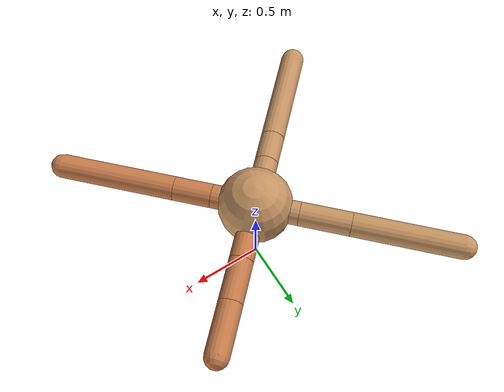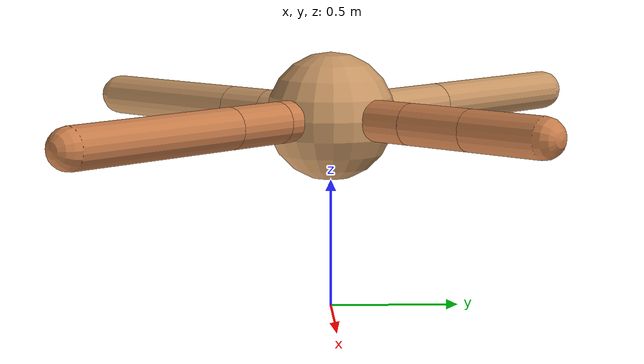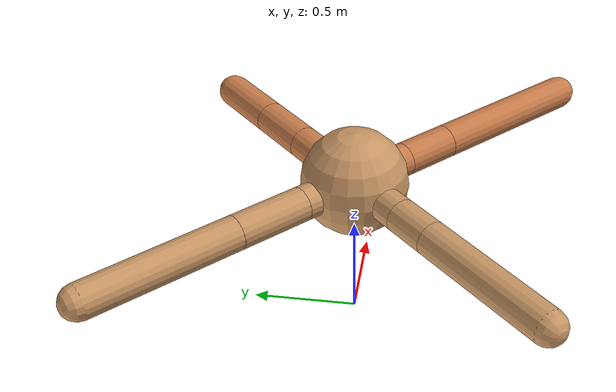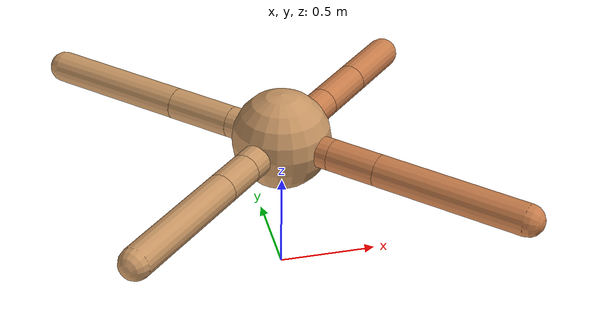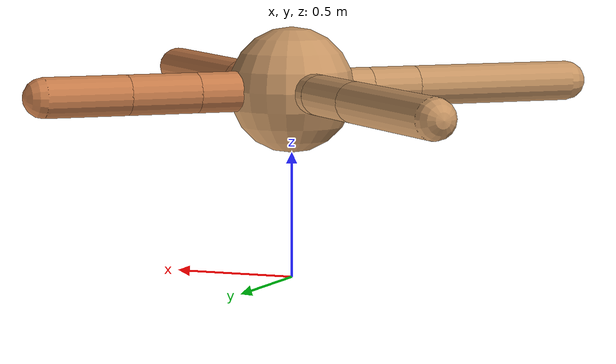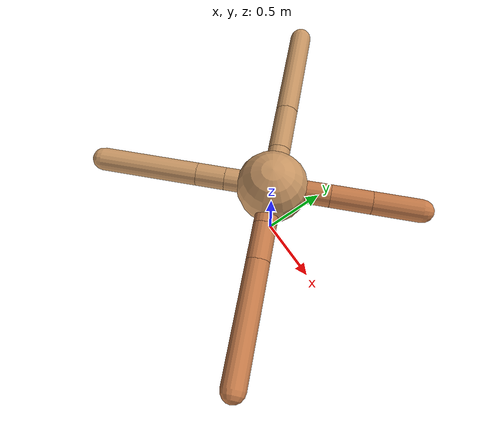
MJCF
<mujoco model="ant">
  <compiler angle="degree" coordinate="local" inertiafromgeom="true" />
  <option integrator="RK4" timestep="0.01" />
  <custom>
    <numeric data="0.0 0.0 0.55 1.0 0.0 0.0 0.0 0.0 1.0 0.0 -1.0 0.0 -1.0 0.0 1.0" name="init_qpos" />
  </custom>
  <default>
    <joint armature="1" damping="1" limited="true" />
    <geom conaffinity="0" condim="3" density="5.0" friction="1.5 0.1 0.1" margin="0.01" rgba="0.8 0.6 0.4 1" />
  </default>
  <worldbody>
    <body name="torso" pos="0 0 0.75">
      <geom name="torso_geom" pos="0 0 0" size="0.25" type="sphere" />

      <body name="front_left_leg" pos="0 0 0">
        <geom fromto="0.0 0.0 0.0 0.2837476896345514 0.2837476896345514 0.0" name="aux_1_geom" size="0.08" type="capsule" rgba=".8 .5 .3 1" />
        <body name="aux_1" pos="0.2837476896345514 0.2837476896345514 0.0">
          <joint axis="0 0 1" name="hip_1" pos="0.0 0.0 0.0" range="-40 40" type="hinge" />
          <geom fromto="0.0 0.0 0.0 0.20177748704707216 0.20177748704707216 0.0" name="left_leg_geom" size="0.08" type="capsule" rgba=".8 .5 .3 1" />
          <body pos="0.20177748704707216 0.20177748704707216 0.0" name="front_left_foot">
            <joint axis="-1 1 0" name="ankle_1" pos="0.0 0.0 0.0" range="30 100" type="hinge" />
            <geom fromto="0.0 0.0 0.0 0.2407659364996181 0.2407659364996181 0.0" name="left_ankle_geom" size="0.08" type="capsule" rgba=".8 .5 .3 1" />
          </body>
        </body>
      </body>
      <body name="front_right_leg" pos="0 0 0">
        <geom fromto="0.0 0.0 0.0 -0.2075080728414027 0.2075080728414027 0.0" name="aux_2_geom" size="0.08" type="capsule" />
        <body name="aux_2" pos="-0.2075080728414027 0.2075080728414027 0.0">
          <joint axis="0 0 1" name="hip_2" pos="0.0 0.0 0.0" range="-40 40" type="hinge" />
          <geom fromto="0.0 0.0 0.0 -0.24133448425763118 0.24133448425763118 0.0" name="right_leg_geom" size="0.08" type="capsule" />
          <body pos="-0.24133448425763118 0.24133448425763118 0.0" name="front_right_foot">
            <joint axis="1 1 0" name="ankle_2" pos="0.0 0.0 0.0" range="-100 -30" type="hinge" />
            <geom fromto="0.0 0.0 0.0 -0.5140351603788429 0.5140351603788429 0.0" name="right_ankle_geom" size="0.08" type="capsule" />
          </body>
        </body>
      </body>
      <body name="left_back_leg" pos="0 0 0">
        <geom fromto="0.0 0.0 0.0 -0.23436411323278927 -0.23436411323278927 0.0" name="aux_3_geom" size="0.08" type="capsule" />
        <body name="aux_3" pos="-0.23436411323278927 -0.23436411323278927 0.0">
          <joint axis="0 0 1" name="hip_3" pos="0.0 0.0 0.0" range="-40 40" type="hinge" />
          <geom fromto="0.0 0.0 0.0 -0.14171312329593486 -0.14171312329593486 0.0" name="back_leg_geom" size="0.08" type="capsule" />
          <body pos="-0.14171312329593486 -0.14171312329593486 0.0" name="left_back_foot">
            <joint axis="-1 1 0" name="ankle_3" pos="0.0 0.0 0.0" range="-100 -30" type="hinge" />
            <geom fromto="0.0 0.0 0.0 -0.4808388054677322 -0.4808388054677322 0.0" name="third_ankle_geom" size="0.08" type="capsule" />
          </body>
        </body>
      </body>
      <body name="right_back_leg" pos="0 0 0">
        <geom fromto="0.0 0.0 0.0 0.20708253085349704 -0.20708253085349704 0.0" name="aux_4_geom" size="0.08" type="capsule" rgba=".8 .5 .3 1" />
        <body name="aux_4" pos="0.20708253085349704 -0.20708253085349704 0.0">
          <joint axis="0 0 1" name="hip_4" pos="0.0 0.0 0.0" range="-40 40" type="hinge" />
          <geom fromto="0.0 0.0 0.0 0.180255433332135 -0.180255433332135 0.0" name="rightback_leg_geom" size="0.08" type="capsule" rgba=".8 .5 .3 1" />
          <body pos="0.180255433332135 -0.180255433332135 0.0" name="right_back_foot">
            <joint axis="1 1 0" name="ankle_4" pos="0.0 0.0 0.0" range="30 100" type="hinge" />
            <geom fromto="0.0 0.0 0.0 0.5496992021829369 -0.5496992021829369 0.0" name="fourth_ankle_geom" size="0.08" type="capsule" rgba=".8 .5 .3 1" />
          </body>
        </body>
      </body>
    </body>
  </worldbody>
  <actuator>
    <motor ctrllimited="true" ctrlrange="-1.0 1.0" joint="hip_4" gear="150" />
    <motor ctrllimited="true" ctrlrange="-1.0 1.0" joint="ankle_4" gear="150" />
    <motor ctrllimited="true" ctrlrange="-1.0 1.0" joint="hip_1" gear="150" />
    <motor ctrllimited="true" ctrlrange="-1.0 1.0" joint="ankle_1" gear="150" />
    <motor ctrllimited="true" ctrlrange="-1.0 1.0" joint="hip_2" gear="150" />
    <motor ctrllimited="true" ctrlrange="-1.0 1.0" joint="ankle_2" gear="150" />
    <motor ctrllimited="true" ctrlrange="-1.0 1.0" joint="hip_3" gear="150" />
    <motor ctrllimited="true" ctrlrange="-1.0 1.0" joint="ankle_3" gear="150" />
  </actuator>
</mujoco>
